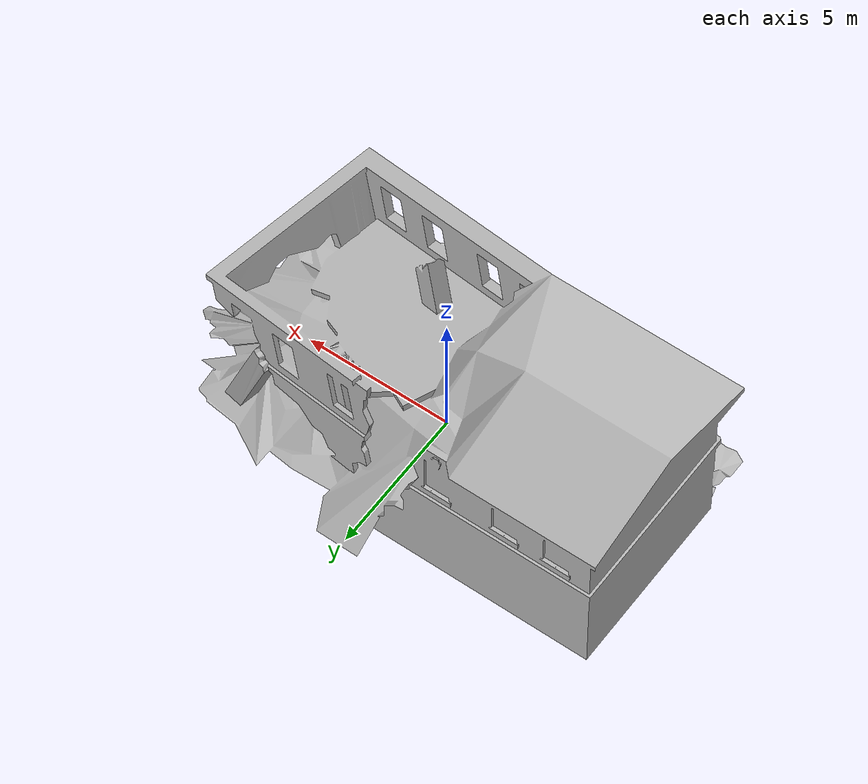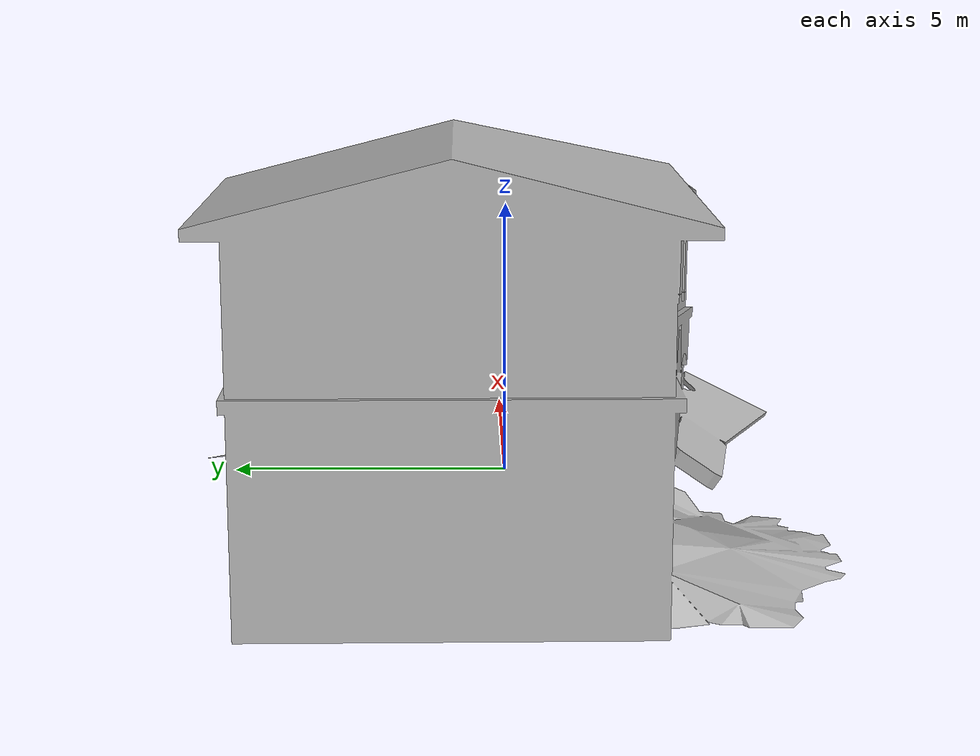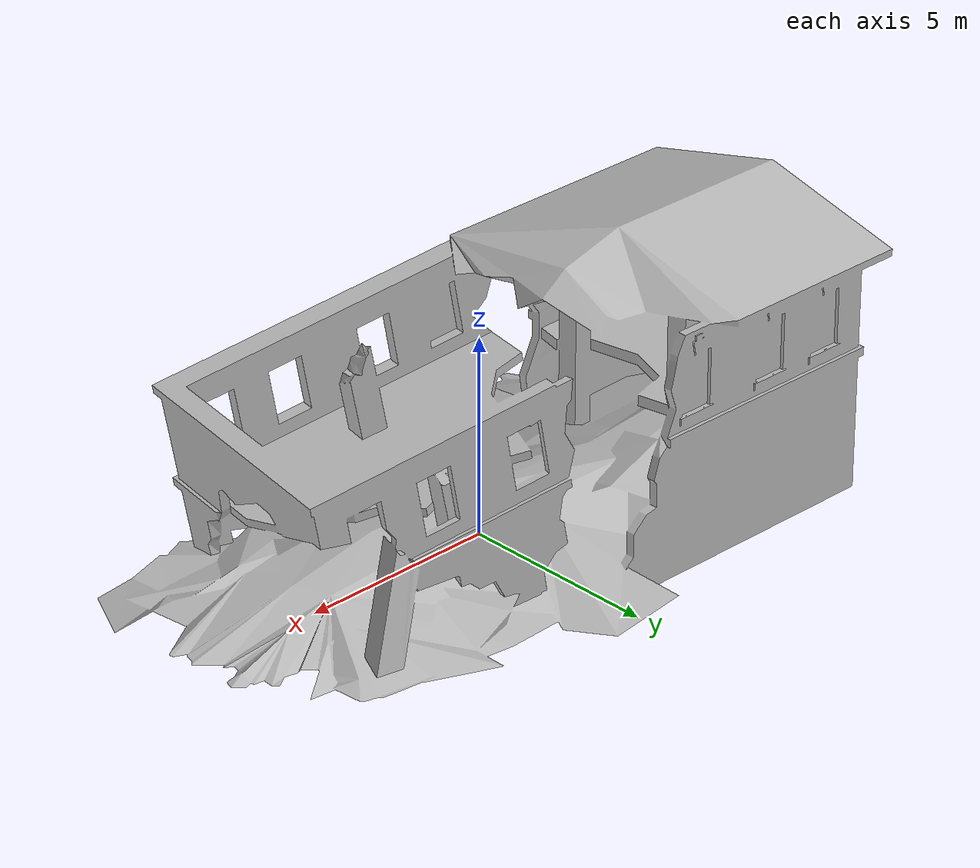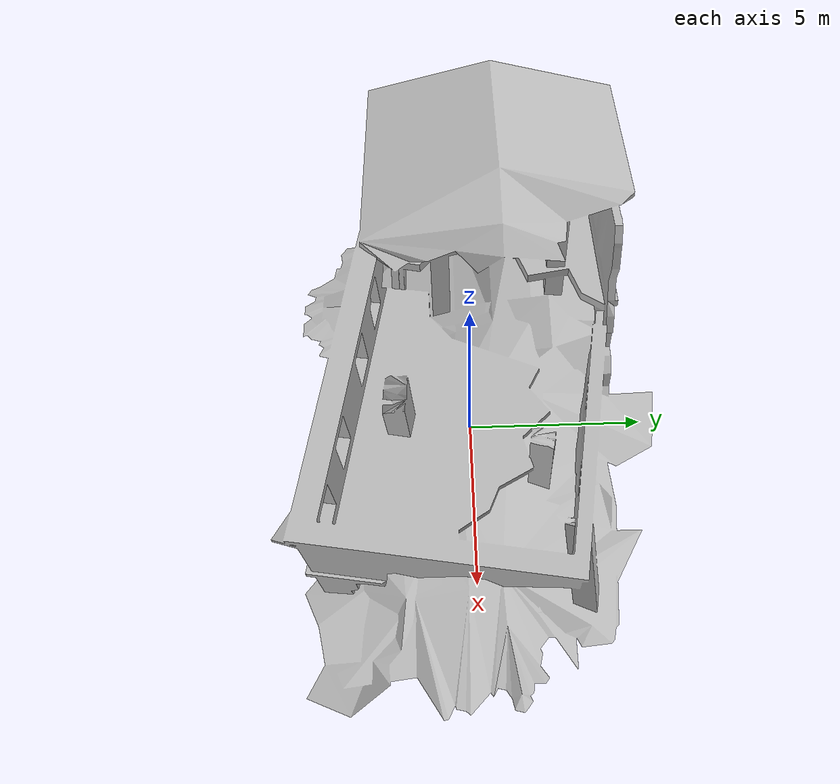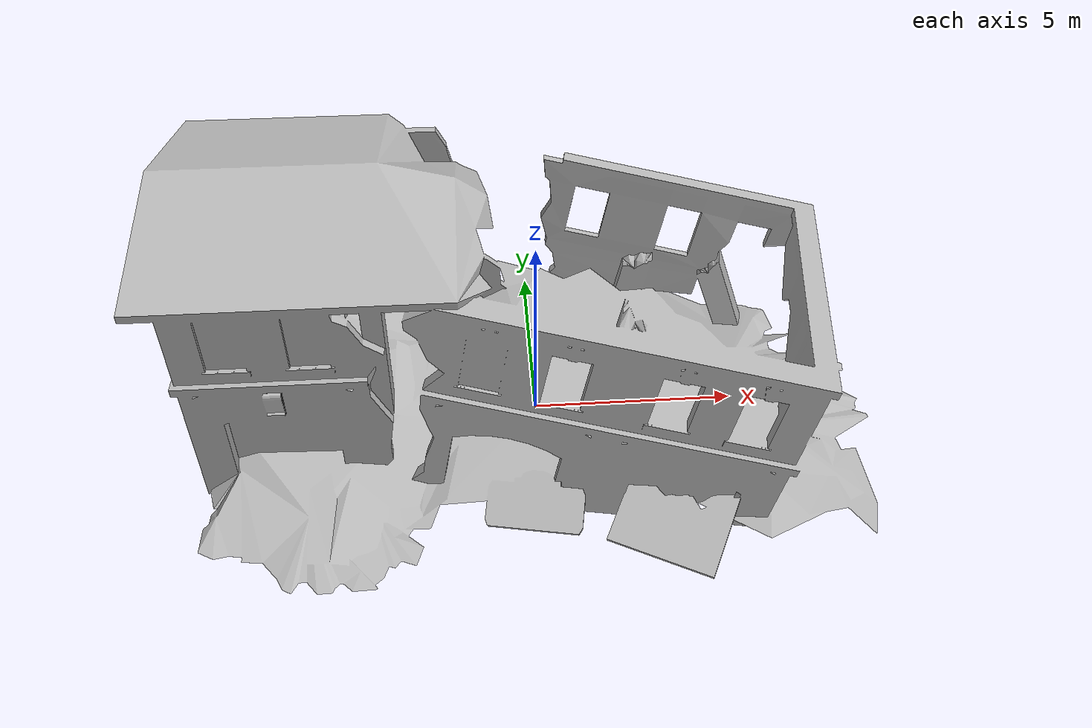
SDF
<?xml version="1.0" ?>
<sdf version="1.6">
  <model name="collapsed_fire_station">
    <static>true</static>
    <link name="link">
      <collision name="collision">
        <geometry>
          <mesh>
              <scale>0.6 0.6 0.6</scale>
            <uri>model://collapsed_fire_station/meshes/collapsed_fire_station.dae</uri>
          </mesh>
        </geometry>
      </collision>
      <visual name="visual">
        <geometry>
          <mesh>
              <scale>0.6 0.6 0.6</scale>
            <uri>model://collapsed_fire_station/meshes/collapsed_fire_station.dae</uri>
          </mesh>
        </geometry>
      </visual>
    </link>
  </model>
</sdf>
